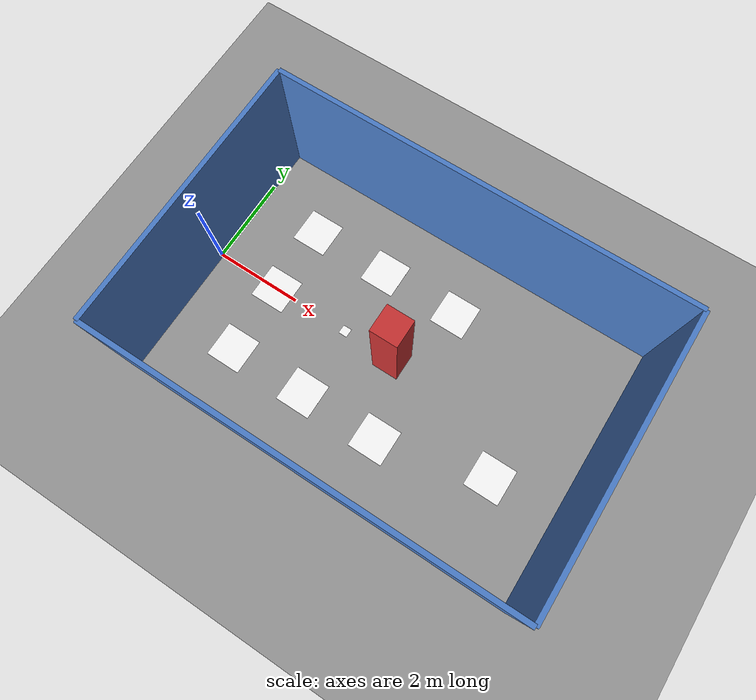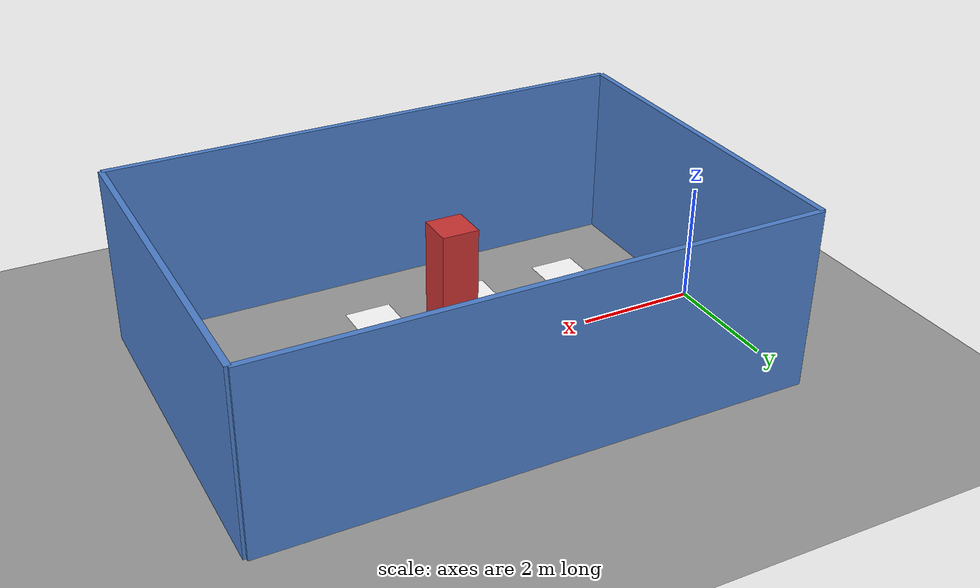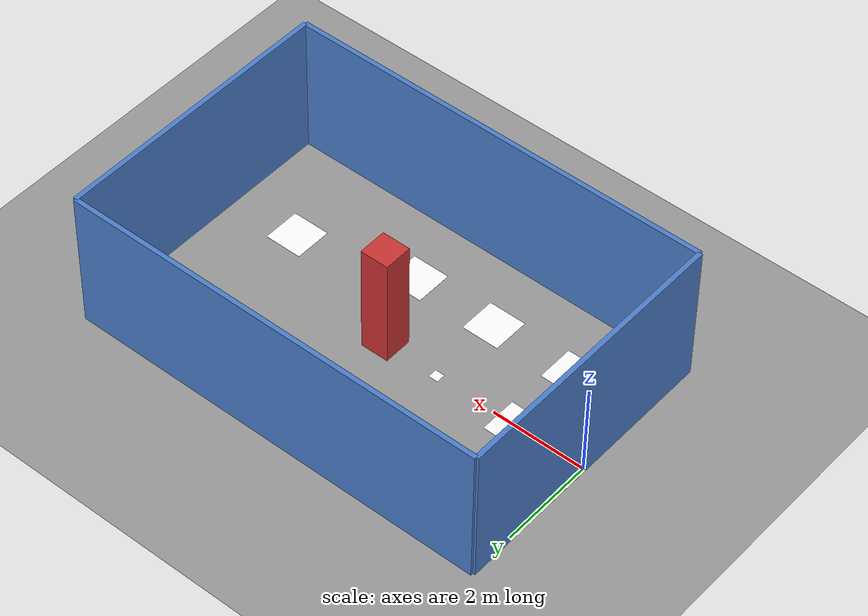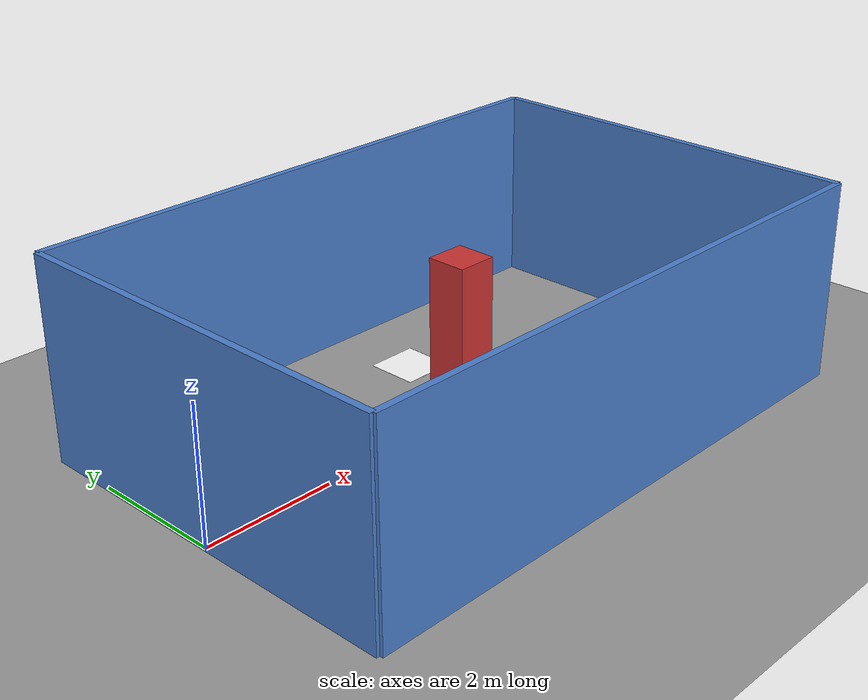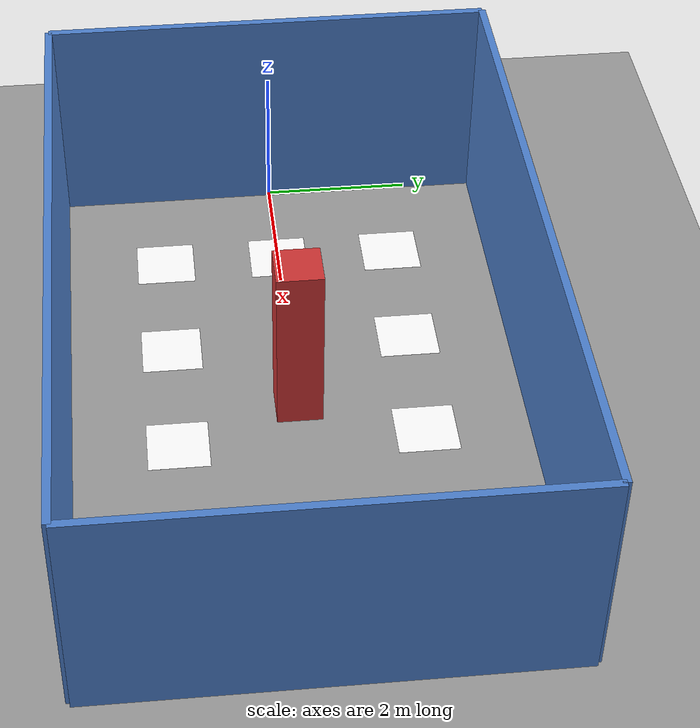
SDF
<?xml version="1.0"?>
<sdf version="1.9">
<world name="robocup_world">

  <!-- 光照 -->
  <light name="sun" type="directional">
    <pose>0 0 10 0 0 0</pose>
    <direction>0.1 0.1 -1</direction>
    <diffuse>1 1 1 1</diffuse>
    <specular>1 1 1 1</specular>
  </light>

  <!-- 地面 -->
  <model name="ground_plane">
    <link name="link">
      <collision name="collision">
        <geometry>
          <plane>
            <normal>0 0 1</normal>
            <size>15 15</size>
          </plane>
        </geometry>
      </collision>
      <visual name="visual">
        <geometry>
          <plane>
            <normal>0 0 1</normal>
            <size>15 15</size>
          </plane>
        </geometry>
        <material>
          <diffuse>0.6 0.6 0.6 1</diffuse>
        </material>
      </visual>
    </link>
  </model>

  <!-- 后墙 X=0 -->
  <model name="wall_back">
    <pose>0 0 1.5 0 0 0</pose>
    <link name="link">
      <collision name="collision">
        <geometry><box><size>0.1 6 3</size></box></geometry>
      </collision>
      <visual name="visual">
        <geometry><box><size>0.1 6 3</size></box></geometry>
        <material><diffuse>0.3 0.5 0.8 1</diffuse></material>
      </visual>
    </link>
  </model>

  <!-- 前墙 X=9 -->
  <model name="wall_front">
    <pose>9 0 1.5 0 0 0</pose>
    <link name="link">
      <collision name="collision">
        <geometry><box><size>0.1 6 3</size></box></geometry>
      </collision>
      <visual name="visual">
        <geometry><box><size>0.1 6 3</size></box></geometry>
        <material><diffuse>0.3 0.5 0.8 1</diffuse></material>
      </visual>
    </link>
  </model>

  <!-- 左墙 Y=-3 -->
  <model name="wall_left">
    <pose>4.5 -3 1.5 0 0 0</pose>
    <link name="link">
      <collision name="collision">
        <geometry><box><size>9 0.1 3</size></box></geometry>
      </collision>
      <visual name="visual">
        <geometry><box><size>9 0.1 3</size></box></geometry>
        <material><diffuse>0.3 0.5 0.8 1</diffuse></material>
      </visual>
    </link>
  </model>

  <!-- 右墙 Y=3 -->
  <model name="wall_right">
    <pose>4.5 3 1.5 0 0 0</pose>
    <link name="link">
      <collision name="collision">
        <geometry><box><size>9 0.1 3</size></box></geometry>
      </collision>
      <visual name="visual">
        <geometry><box><size>9 0.1 3</size></box></geometry>
        <material><diffuse>0.3 0.5 0.8 1</diffuse></material>
      </visual>
    </link>
  </model>

  <!-- 起飞点 -->
  <model name="takeoff_point">
    <pose>1.5 0 0.005 0 0 0</pose>
    <link name="link">
      <visual name="vis">
        <geometry><plane><normal>0 0 1</normal><size>0.8 0.8</size></plane></geometry>
        <material><diffuse>1 1 1 1</diffuse></material>
      </visual>
    </link>
  </model>

  <!-- 左降落点 -->
  <model name="land_left">
    <pose>1.5 -1.6 0.005 0 0 0</pose>
    <link name="link">
      <visual name="vis">
        <geometry><plane><normal>0 0 1</normal><size>0.8 0.8</size></plane></geometry>
        <material><diffuse>1 1 1 1</diffuse></material>
      </visual>
    </link>
  </model>

  <!-- 右降落点 -->
  <model name="land_right">
    <pose>1.5 1.6 0.005 0 0 0</pose>
    <link name="link">
      <visual name="vis">
        <geometry><plane><normal>0 0 1</normal><size>0.8 0.8</size></plane></geometry>
        <material><diffuse>1 1 1 1</diffuse></material>
      </visual>
    </link>
  </model>

  <!-- 图片靶1 -->
  <model name="img_target_1">
    <pose>3.3 -1.6 0.005 0 0 0</pose>
    <link name="link">
      <visual name="vis">
        <geometry><plane><normal>0 0 1</normal><size>0.8 0.8</size></plane></geometry>
        <material><diffuse>1 1 1 1</diffuse></material>
      </visual>
    </link>
  </model>

  <!-- 图片靶2 -->
  <model name="img_target_2">
    <pose>5.1 -1.6 0.005 0 0 0</pose>
    <link name="link">
      <visual name="vis">
        <geometry><plane><normal>0 0 1</normal><size>0.8 0.8</size></plane></geometry>
        <material><diffuse>1 1 1 1</diffuse></material>
      </visual>
    </link>
  </model>

  <!-- 图片靶3 -->
  <model name="img_target_3">
    <pose>3.3 1.6 0.005 0 0 0</pose>
    <link name="link">
      <visual name="vis">
        <geometry><plane><normal>0 0 1</normal><size>0.8 0.8</size></plane></geometry>
        <material><diffuse>1 1 1 1</diffuse></material>
      </visual>
    </link>
  </model>

  <!-- 图片靶4 -->
  <model name="img_target_4">
    <pose>5.1 1.6 0.005 0 0 0</pose>
    <link name="link">
      <visual name="vis">
        <geometry><plane><normal>0 0 1</normal><size>0.8 0.8</size></plane></geometry>
        <material><diffuse>1 1 1 1</diffuse></material>
      </visual>
    </link>
  </model>

  <!-- 特殊靶 -->
  <model name="special_target">
    <pose>7.5 -1.0 0.005 0 0 0</pose>
    <link name="link">
      <visual name="vis">
        <geometry><plane><normal>0 0 1</normal><size>0.8 0.8</size></plane></geometry>
        <material><diffuse>1 1 1 1</diffuse></material>
      </visual>
    </link>
  </model>

  <!-- 二维码 -->
  <model name="qrcode">
    <pose>3.3 0 0.005 0 0 0</pose>
    <link name="link">
      <visual name="vis">
        <geometry><plane><normal>0 0 1</normal><size>0.2 0.2</size></plane></geometry>
        <material><diffuse>1 1 1 1</diffuse></material>
      </visual>
    </link>
  </model>

  <!-- ===================== 障碍物（60 * 60 * 240方体） ===================== -->
<model name="obstacle">
  <pose>4.5 0 1.2 0 0 0</pose>
  <link name="link">
    <collision name="collision">
      <geometry><box><size>0.6 0.6 2.4</size></box></geometry>
    </collision>
    <visual name="visual">
      <geometry><box><size>0.6 0.6 2.4</size></box></geometry>
      <material><diffuse>0.8 0.2 0.2 1</diffuse></material>
    </visual>
  </link>
</model>

</world>
</sdf>
